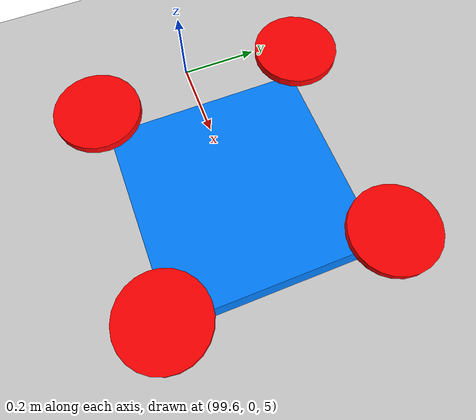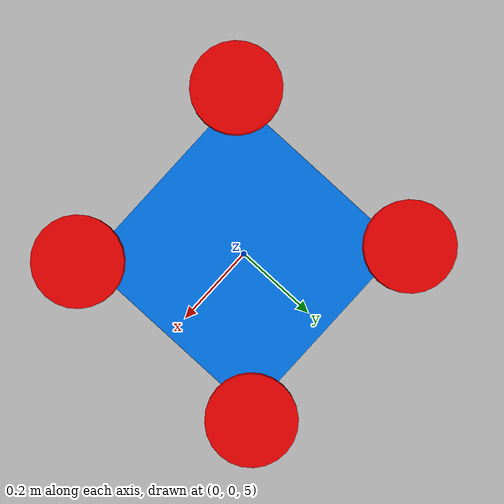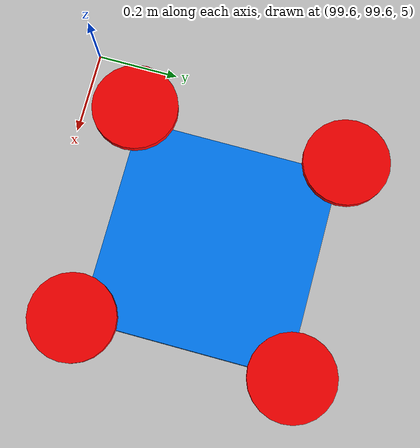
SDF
<?xml version="1.0" ?>
<sdf version="1.6">
  <world name="fanet_world">

    <!-- 물리 엔진 설정 -->
    <physics name="default_physics" default="0" type="ode">
      <gravity>0 0 -9.8066</gravity>
      <ode>
        <solver>
          <type>quick</type>
          <iters>10</iters>
          <sor>1.3</sor>
        </solver>
        <constraints>
          <cfm>0.0</cfm>
          <erp>0.2</erp>
          <contact_max_correcting_vel>100.0</contact_max_correcting_vel>
          <contact_surface_layer>0.001</contact_surface_layer>
        </constraints>
      </ode>
      <max_step_size>0.002</max_step_size>
      <real_time_factor>1.000000</real_time_factor>
      <real_time_update_rate>500.000000</real_time_update_rate>
    </physics>

    <!-- 조명 설정 -->
    <light name="sun" type="directional">
      <cast_shadows>1</cast_shadows>
      <pose>0 0 10 0 0 0</pose>
      <diffuse>0.8 0.8 0.8 1</diffuse>
      <specular>0.2 0.2 0.2 1</specular>
      <attenuation>
        <range>1000</range>
        <constant>0.9</constant>
        <linear>0.01</linear>
        <quadratic>0.001</quadratic>
      </attenuation>
      <direction>-0.5 0.1 -0.9</direction>
    </light>

    <!-- 지면 -->
    <model name="ground_plane">
      <static>true</static>
      <link name="link">
        <collision name="collision">
          <geometry>
            <plane>
              <normal>0 0 1</normal>
              <size>2000 2000</size>
            </plane>
          </geometry>
          <surface>
            <contact>
              <collide_bitmask>65535</collide_bitmask>
              <ode>
                <mu>100</mu>
                <mu2>50</mu2>
              </ode>
            </contact>
            <friction>
              <ode>
                <mu>100</mu>
                <mu2>50</mu2>
              </ode>
            </friction>
          </surface>
        </collision>
        <visual name="visual">
          <cast_shadows>false</cast_shadows>
          <geometry>
            <plane>
              <normal>0 0 1</normal>
              <size>2000 2000</size>
            </plane>
          </geometry>
          <material>
            <script>
              <uri>file://media/materials/scripts/gazebo.material</uri>
              <name>Gazebo/Grey</name>
            </script>
          </material>
        </visual>
      </link>
    </model>

    <!-- FANET 드론들 -->
    <include>
      <uri>model://fanet_drone</uri>
      <name>drone_0</name>
      <pose>0 0 5 0 0 0</pose>
    </include>

    <include>
      <uri>model://fanet_drone</uri>
      <name>drone_1</name>
      <pose>100 0 5 0 0 0</pose>
    </include>

    <include>
      <uri>model://fanet_drone</uri>
      <name>drone_2</name>
      <pose>0 100 5 0 0 0</pose>
    </include>

    <include>
      <uri>model://fanet_drone</uri>
      <name>drone_3</name>
      <pose>100 100 5 0 0 0</pose>
    </include>

    <!-- GUI 설정 -->
    <gui fullscreen='0'>
      <camera name='user_camera'>
        <pose>250 -250 150 0 0.275643 2.35619</pose>
        <view_controller>orbit</view_controller>
      </camera>
    </gui>

  </world>
</sdf>

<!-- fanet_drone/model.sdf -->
<sdf version="1.6">
  <model name="fanet_drone">
    <pose>0 0 0.2 0 0 0</pose>
    <link name="base_link">
      <collision name="collision">
        <geometry>
          <box>
            <size>0.5 0.5 0.1</size>
          </box>
        </geometry>
      </collision>
      <visual name="visual">
        <geometry>
          <box>
            <size>0.5 0.5 0.1</size>
          </box>
        </geometry>
        <material>
          <ambient>0.0 0.5 1.0 1</ambient>
          <diffuse>0.0 0.5 1.0 1</diffuse>
        </material>
      </visual>
      <inertial>
        <mass>1.5</mass>
        <inertia>
          <ixx>0.1</ixx>
          <iyy>0.1</iyy>
          <izz>0.1</izz>
        </inertia>
      </inertial>
    </link>

    <!-- 프로펠러들 -->
    <link name="rotor_0">
      <pose>0.25 0.25 0.15 0 0 0</pose>
      <visual name="visual">
        <geometry>
          <cylinder>
            <radius>0.1</radius>
            <length>0.02</length>
          </cylinder>
        </geometry>
        <material>
          <ambient>1 0 0 1</ambient>
        </material>
      </visual>
    </link>

    <link name="rotor_1">
      <pose>-0.25 0.25 0.15 0 0 0</pose>
      <visual name="visual">
        <geometry>
          <cylinder>
            <radius>0.1</radius>
            <length>0.02</length>
          </cylinder>
        </geometry>
        <material>
          <ambient>1 0 0 1</ambient>
        </material>
      </visual>
    </link>

    <link name="rotor_2">
      <pose>-0.25 -0.25 0.15 0 0 0</pose>
      <visual name="visual">
        <geometry>
          <cylinder>
            <radius>0.1</radius>
            <length>0.02</length>
          </cylinder>
        </geometry>
        <material>
          <ambient>1 0 0 1</ambient>
        </material>
      </visual>
    </link>

    <link name="rotor_3">
      <pose>0.25 -0.25 0.15 0 0 0</pose>
      <visual name="visual">
        <geometry>
          <cylinder>
            <radius>0.1</radius>
            <length>0.02</length>
          </cylinder>
        </geometry>
        <material>
          <ambient>1 0 0 1</ambient>
        </material>
      </visual>
    </link>

    <!-- 조인트들 -->
    <joint name="rotor_0_joint" type="revolute">
      <parent>base_link</parent>
      <child>rotor_0</child>
      <axis>
        <xyz>0 0 1</xyz>
      </axis>
    </joint>

    <joint name="rotor_1_joint" type="revolute">
      <parent>base_link</parent>
      <child>rotor_1</child>
      <axis>
        <xyz>0 0 1</xyz>
      </axis>
    </joint>

    <joint name="rotor_2_joint" type="revolute">
      <parent>base_link</parent>
      <child>rotor_2</child>
      <axis>
        <xyz>0 0 1</xyz>
      </axis>
    </joint>

    <joint name="rotor_3_joint" type="revolute">
      <parent>base_link</parent>
      <child>rotor_3</child>
      <axis>
        <xyz>0 0 1</xyz>
      </axis>
    </joint>
  </model>
</sdf>
